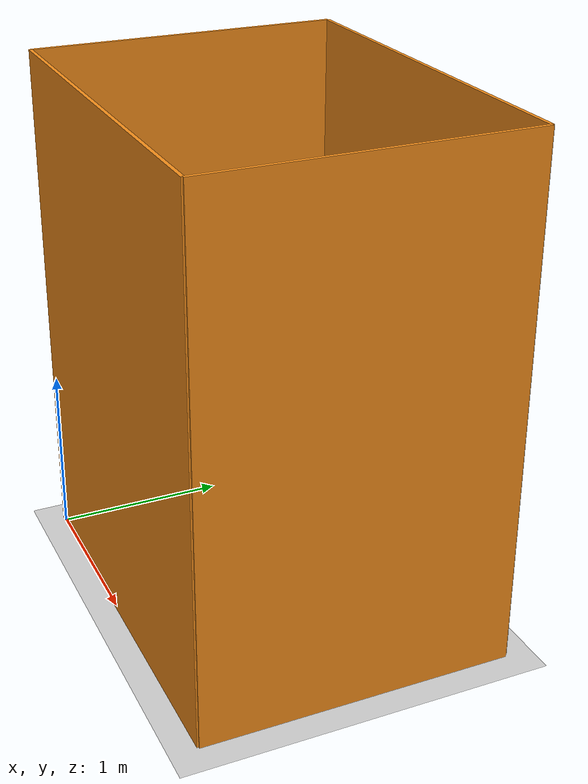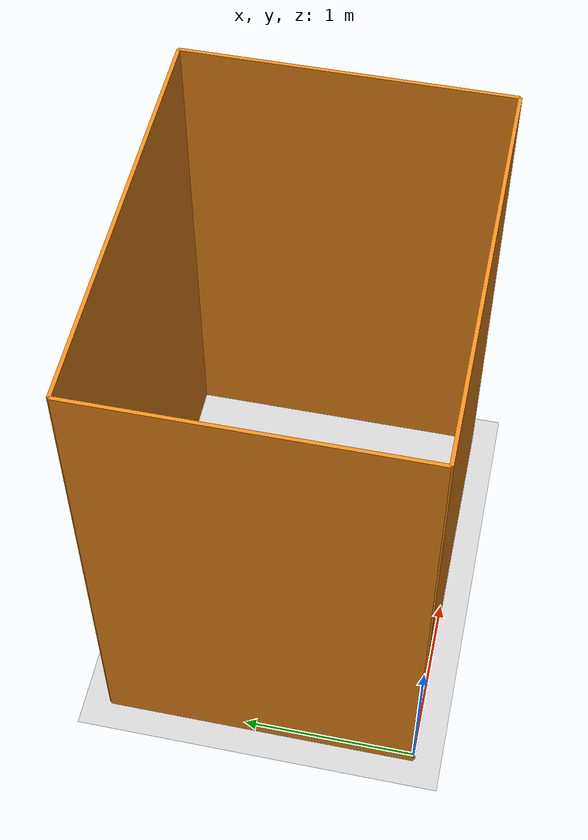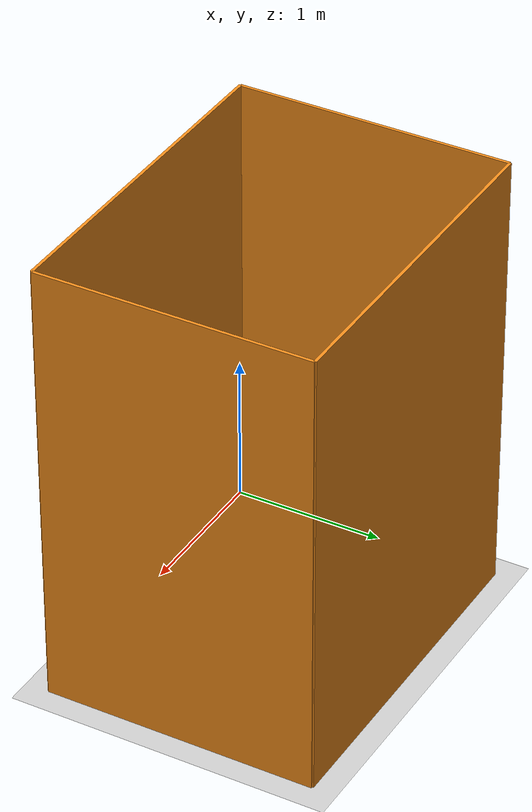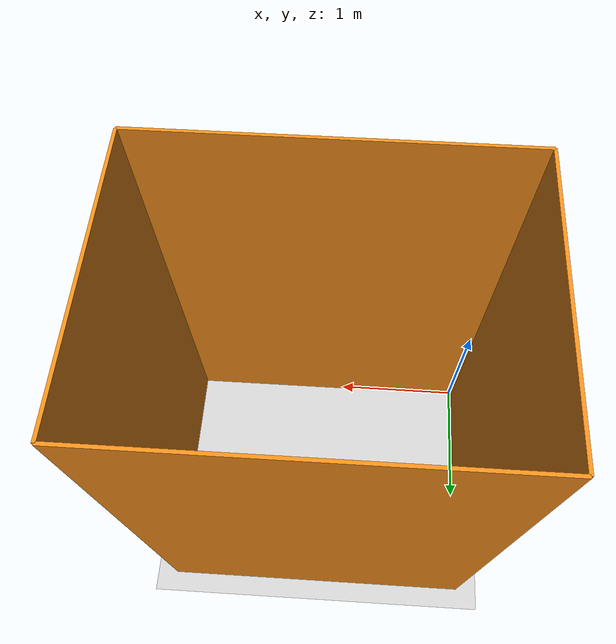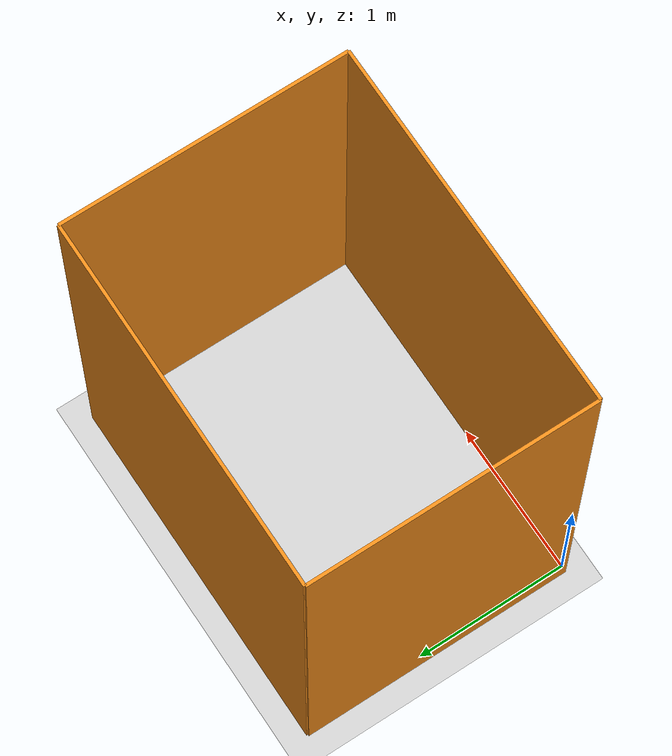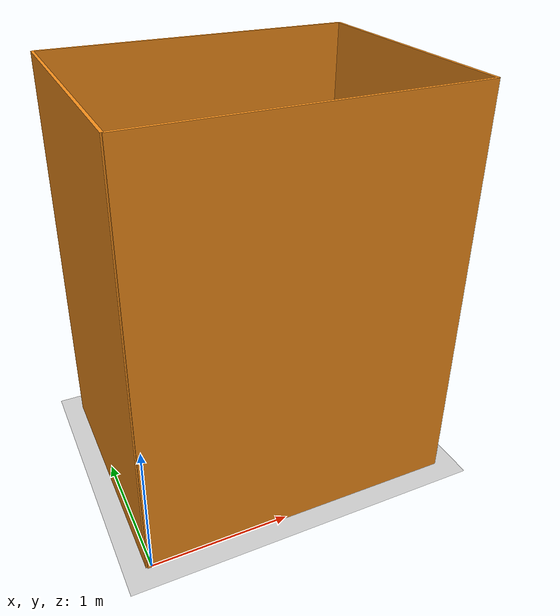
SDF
<sdf version="1.5">
 <world name="default">
  <include><uri>model://sun</uri></include>
  <include><uri>model://ground_plane</uri><pose>0 0 -0.001 0 0 0</pose></include>
  <model name="wall_0">
   <pose frame="''">0 0 0 0 0 0</pose>
   <link name="link_0">
    <gravity>0</gravity>
    <kinematic>1</kinematic>
    <visual name="wall_0_visual_0">
     <pose>1.135 0.0 1.5 0 0 0.0</pose>
     <geometry><box><size>2.33 0.02 3.0</size></box></geometry>
     <material>
      <script><uri>file://media/materials/scripts/gazebo.material</uri><name>Gazebo/Orange</name></script>
     </material>
    </visual>
    <collision name="wall_0_collision_0">
     <pose>1.135 0.0 1.5 0 0 0.0</pose>
     <geometry><box><size>2.33 0.02 3.0</size></box></geometry>
    </collision>
   </link>
  </model>
  <model name="wall_1">
   <pose frame="''">0 0 0 0 0 0</pose>
   <link name="link_0">
    <gravity>0</gravity>
    <kinematic>1</kinematic>
    <visual name="wall_1_visual_0">
     <pose>2.3 0.9 1.5 0 0 1.57079632679</pose>
     <geometry><box><size>1.8 0.02 3.0</size></box></geometry>
     <material>
      <script><uri>file://media/materials/scripts/gazebo.material</uri><name>Gazebo/Orange</name></script>
     </material>
    </visual>
    <collision name="wall_1_collision_0">
     <pose>2.3 0.9 1.5 0 0 1.57079632679</pose>
     <geometry><box><size>1.8 0.02 3.0</size></box></geometry>
    </collision>
   </link>
  </model>
  <model name="wall_2">
   <pose frame="''">0 0 0 0 0 0</pose>
   <link name="link_0">
    <gravity>0</gravity>
    <kinematic>1</kinematic>
    <visual name="wall_2_visual_0">
     <pose>-0.03 0.9 1.5 0 0 1.57079632679</pose>
     <geometry><box><size>1.8 0.02 3.0</size></box></geometry>
     <material>
      <script><uri>file://media/materials/scripts/gazebo.material</uri><name>Gazebo/Orange</name></script>
     </material>
    </visual>
    <collision name="wall_2_collision_0">
     <pose>-0.03 0.9 1.5 0 0 1.57079632679</pose>
     <geometry><box><size>1.8 0.02 3.0</size></box></geometry>
    </collision>
   </link>
  </model>
  <model name="wall_3">
   <pose frame="''">0 0 0 0 0 0</pose>
   <link name="link_0">
    <gravity>0</gravity>
    <kinematic>1</kinematic>
    <visual name="wall_3_visual_0">
     <pose>1.135 1.8 1.5 0 0 0.0</pose>
     <geometry><box><size>2.33 0.02 3.0</size></box></geometry>
     <material>
      <script><uri>file://media/materials/scripts/gazebo.material</uri><name>Gazebo/Orange</name></script>
     </material>
    </visual>
    <collision name="wall_3_collision_0">
     <pose>1.135 1.8 1.5 0 0 0.0</pose>
     <geometry><box><size>2.33 0.02 3.0</size></box></geometry>
    </collision>
   </link>
  </model>
  <physics default="0" name="default_physics" type="ode">
   <gravity>0 0 -9.8066</gravity>
   <ode>
    <solver>
     <type>quick</type>
     <iters>20</iters>
     <sor>1.3</sor>
     <use_dynamic_moi_rescaling>0</use_dynamic_moi_rescaling>
    </solver>
    <constraints>
     <cfm>0</cfm>
     <erp>0.2</erp>
     <contact_max_correcting_vel>100</contact_max_correcting_vel>
     <contact_surface_layer>0.001</contact_surface_layer>
    </constraints>
   </ode>
   <max_step_size>0.002</max_step_size>
   <real_time_factor>1</real_time_factor>
   <real_time_update_rate>500</real_time_update_rate>
   <magnetic_field>6e-06 2.3e-05 -4.2e-05</magnetic_field>
  </physics>
 </world>
</sdf>
